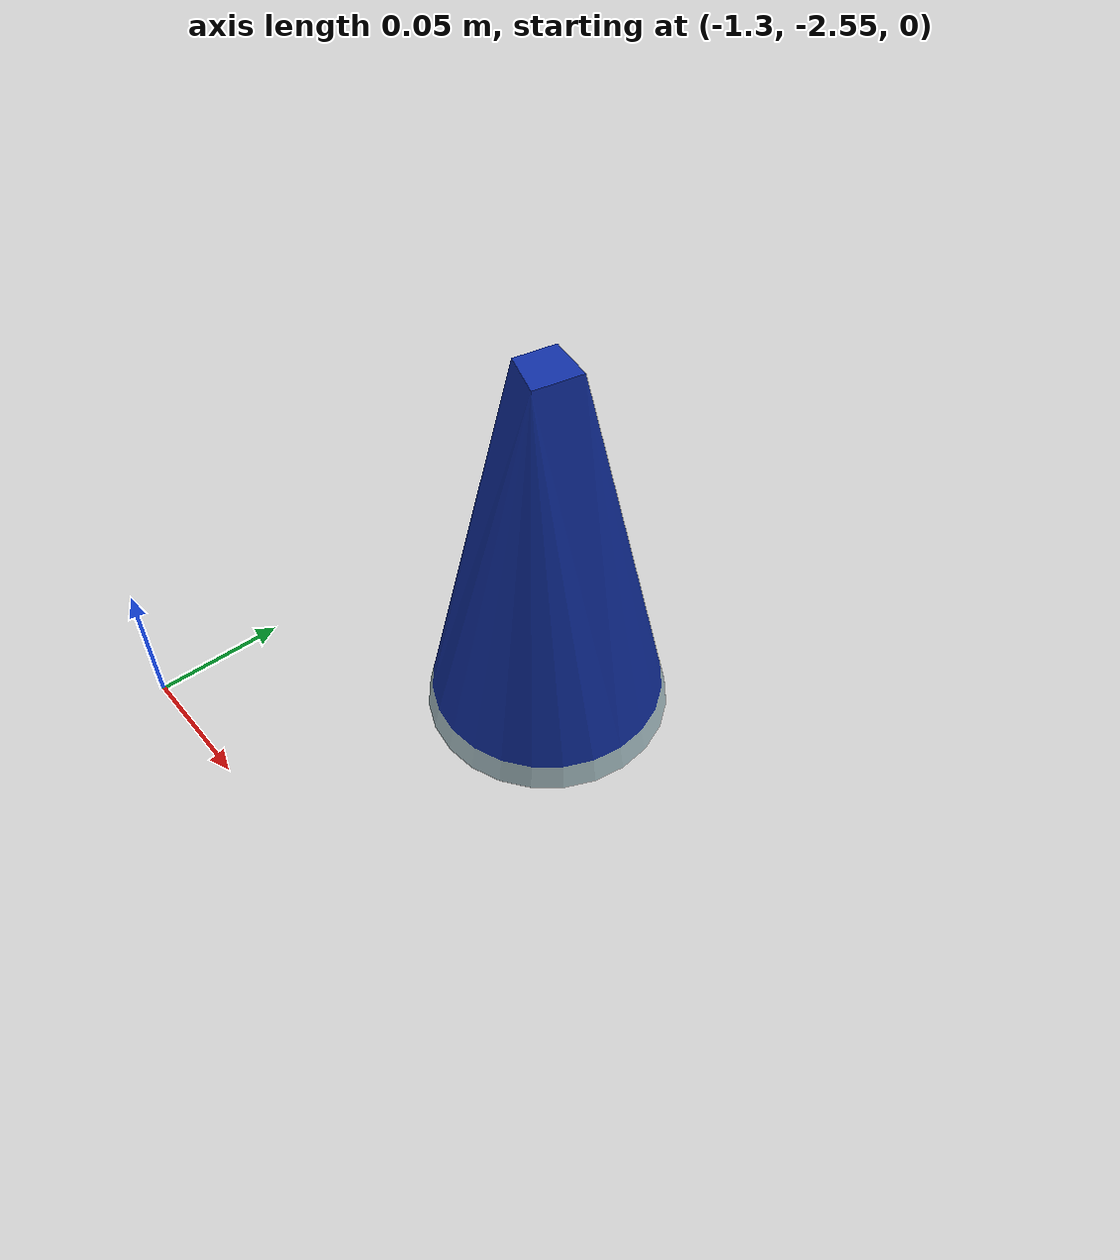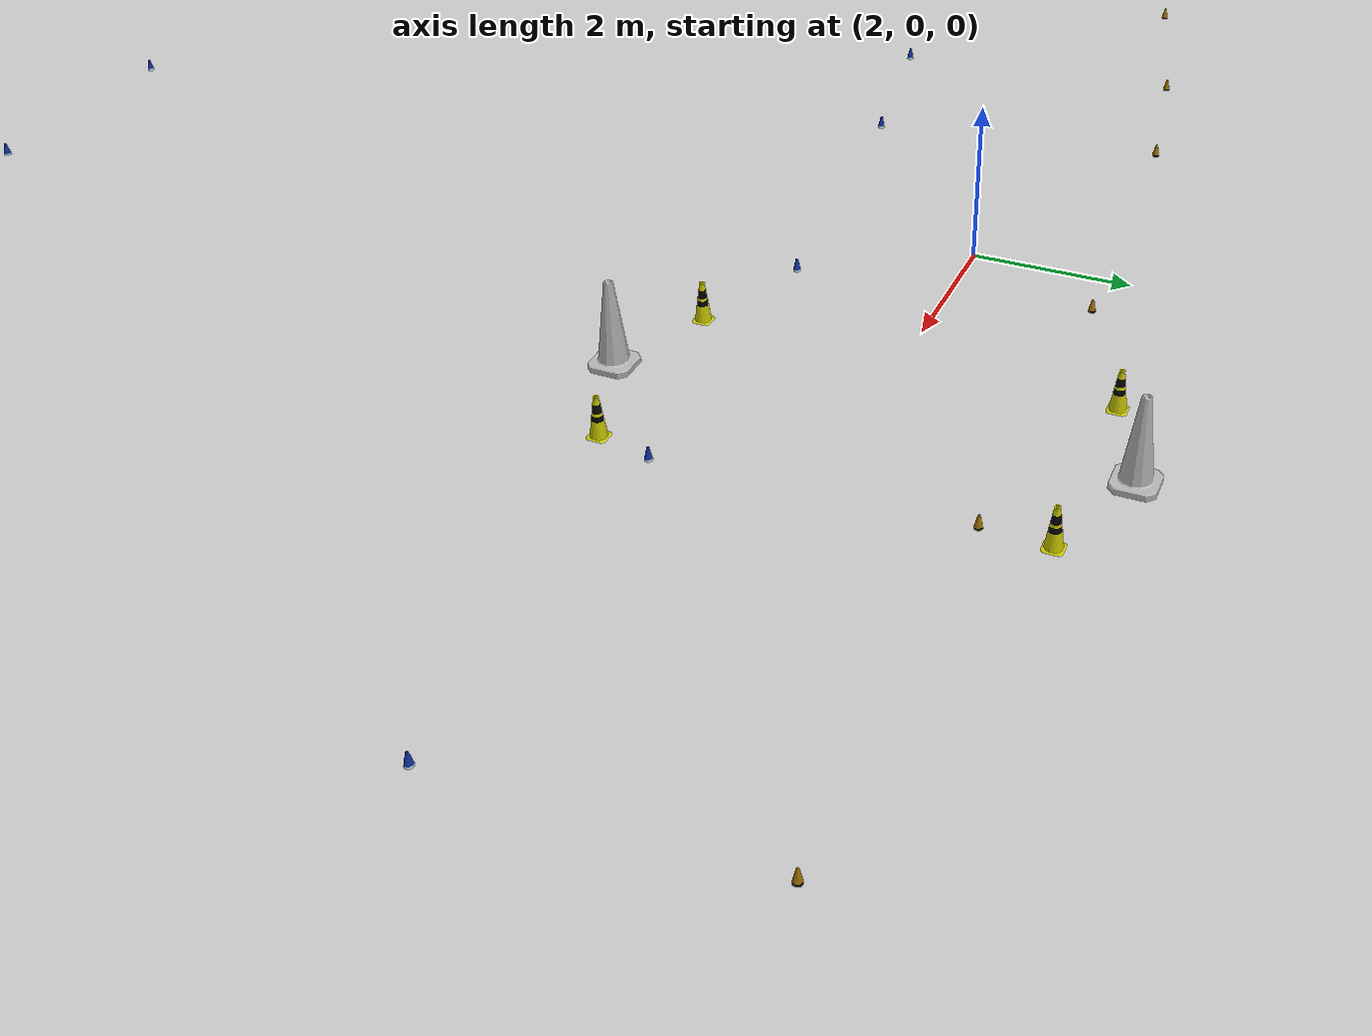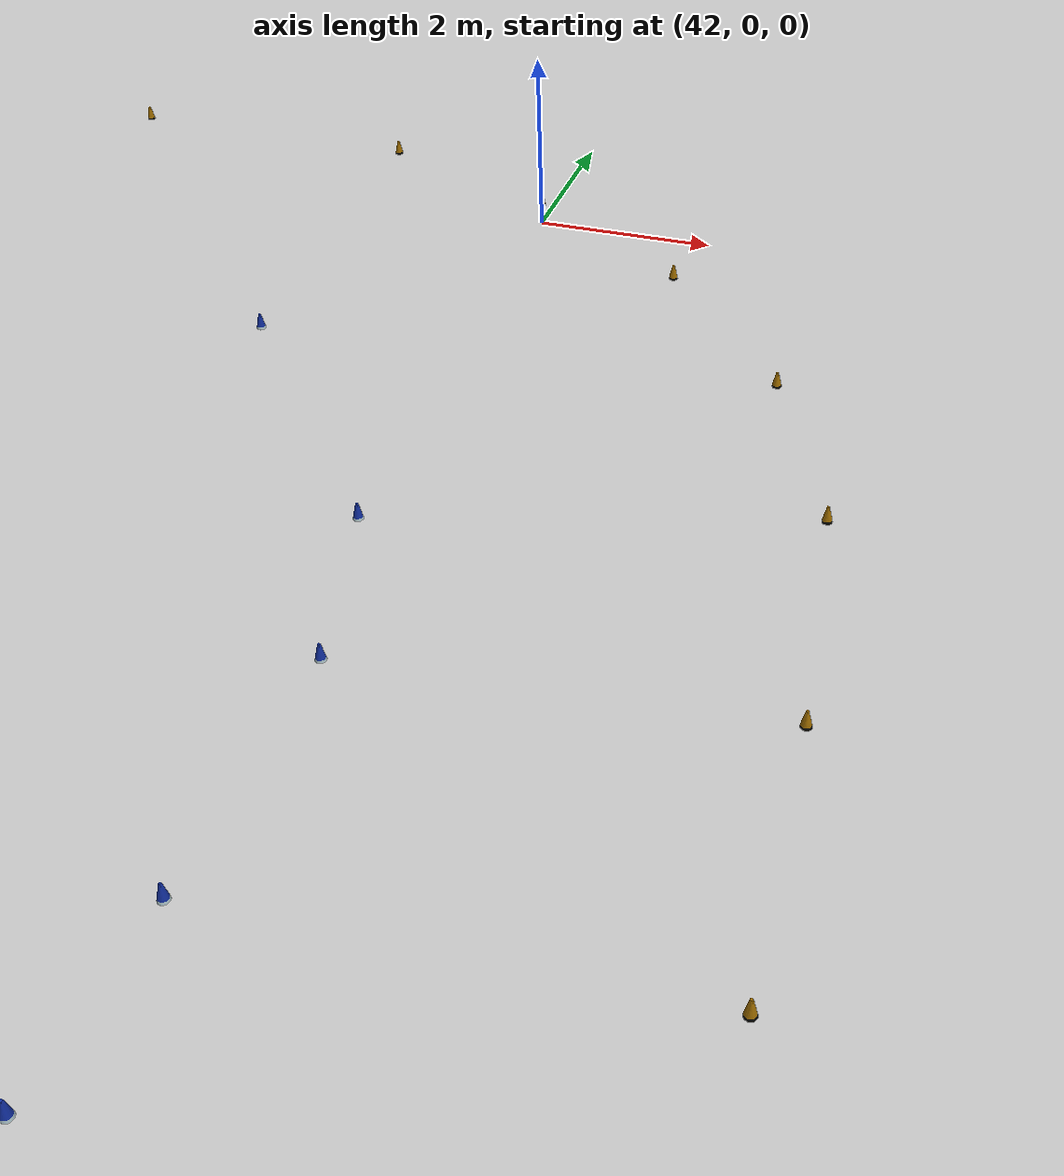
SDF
<sdf version="1.6">
 <world name="default">
  <light name="sun" type="directional">
   <pose>0 0 10 0 -0 0</pose>
   <diffuse>0.8 0.8 0.8 1</diffuse>
   <specular>0.2 0.2 0.2 1</specular>
   <attenuation>
    <range>1000</range>
    <constant>0.9</constant>
    <linear>0.01</linear>
    <quadratic>0.001</quadratic>
   </attenuation>
   <direction>-0.5 0.1 -0.9</direction>
  </light>
  <gravity>0 0 -9.8</gravity>
  <magnetic_field>6e-06 2.3e-05 -4.2e-05</magnetic_field>
  <atmosphere type="adiabatic"/>
  <physics name="default_physics" default="0" type="ode">
   <max_step_size>0.005</max_step_size>
   <real_time_factor>1</real_time_factor>
   <real_time_update_rate>200</real_time_update_rate>
  </physics>
  <scene><ambient>0.4 0.4 0.4 1</ambient><background>0.7 0.7 0.7 1</background><shadows>1</shadows></scene>
  <spherical_coordinates>
   <surface_model>EARTH_WGS84</surface_model>
   <latitude_deg>0</latitude_deg>
   <longitude_deg>0</longitude_deg>
   <elevation>0</elevation>
   <heading_deg>0</heading_deg>
  </spherical_coordinates>
  <include><uri>model://ground_plane</uri></include>
  <include><uri>model://fssim_gazebo/models/track</uri><name>track</name></include>
 </world>
</sdf>

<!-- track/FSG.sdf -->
<sdf version="1.4">
  <model name="some track">
    <include>
      <uri>model://fssim_gazebo/models/cone_blue</uri>
      <pose>-1.20535457134 -2.43421959877 0 0 0 0</pose>
      <name>cone_right</name>
    </include>
    <include>
      <uri>model://fssim_gazebo/models/cone_blue</uri>
      <pose>3.17810750008 -1.93232870102 0 0 0 0</pose>
      <name>cone_right</name>
    </include>
    <include>
      <uri>model://fssim_gazebo/models/cone_blue</uri>
      <pose>7.48558950424 -1.81353652477 0 0 0 0</pose>
      <name>cone_right</name>
    </include>
    <include>
      <uri>model://fssim_gazebo/models/cone_blue</uri>
      <pose>12.1316843033 -1.68396937847 0 0 0 0</pose>
      <name>cone_right</name>
    </include>
    <include>
      <uri>model://fssim_gazebo/models/cone_blue</uri>
      <pose>16.790725708 -1.63397860527 0 0 0 0</pose>
      <name>cone_right</name>
    </include>
    <include>
      <uri>model://fssim_gazebo/models/cone_blue</uri>
      <pose>21.0159664154 -1.57767641544 0 0 0 0</pose>
      <name>cone_right</name>
    </include>
    <include>
      <uri>model://fssim_gazebo/models/cone_blue</uri>
      <pose>25.9492740631 -1.68443393707 0 0 0 0</pose>
      <name>cone_right</name>
    </include>
    <include>
      <uri>model://fssim_gazebo/models/cone_blue</uri>
      <pose>29.0480709076 -1.72887885571 0 0 0 0</pose>
      <name>cone_right</name>
    </include>
    <include>
      <uri>model://fssim_gazebo/models/cone_blue</uri>
      <pose>32.6119613647 -1.83696222305 0 0 0 0</pose>
      <name>cone_right</name>
    </include>
    <include>
      <uri>model://fssim_gazebo/models/cone_blue</uri>
      <pose>35.9588241577 -2.02518367767 0 0 0 0</pose>
      <name>cone_right</name>
    </include>
    <include>
      <uri>model://fssim_gazebo/models/cone_blue</uri>
      <pose>39.9082717896 -3.04691457748 0 0 0 0</pose>
      <name>cone_right</name>
    </include>
    <include>
      <uri>model://fssim_gazebo/models/cone_blue</uri>
      <pose>42.1978797913 -5.7311501503 0 0 0 0</pose>
      <name>cone_right</name>
    </include>
    <include>
      <uri>model://fssim_gazebo/models/cone_blue</uri>
      <pose>42.643951416 -7.45758581161 0 0 0 0</pose>
      <name>cone_right</name>
    </include>
    <include>
      <uri>model://fssim_gazebo/models/cone_blue</uri>
      <pose>42.6222114563 -9.84560966492 0 0 0 0</pose>
      <name>cone_right</name>
    </include>
    <include>
      <uri>model://fssim_gazebo/models/cone_blue</uri>
      <pose>42.524066925 -11.4708385468 0 0 0 0</pose>
      <name>cone_right</name>
    </include>
    <include>
      <uri>model://fssim_gazebo/models/cone_blue</uri>
      <pose>42.1597290039 -13.4860305786 0 0 0 0</pose>
      <name>cone_right</name>
    </include>
    <include>
      <uri>model://fssim_gazebo/models/cone_blue</uri>
      <pose>41.4561500549 -15.1818876266 0 0 0 0</pose>
      <name>cone_right</name>
    </include>
    <include>
      <uri>model://fssim_gazebo/models/cone_blue</uri>
      <pose>40.5325622559 -16.8797531128 0 0 0 0</pose>
      <name>cone_right</name>
    </include>
    <include>
      <uri>model://fssim_gazebo/models/cone_blue</uri>
      <pose>38.5180549622 -18.9988632202 0 0 0 0</pose>
      <name>cone_right</name>
    </include>
    <include>
      <uri>model://fssim_gazebo/models/cone_blue</uri>
      <pose>36.2039756775 -20.470911026 0 0 0 0</pose>
      <name>cone_right</name>
    </include>
    <include>
      <uri>model://fssim_gazebo/models/cone_blue</uri>
      <pose>32.7586708069 -21.9738197327 0 0 0 0</pose>
      <name>cone_right</name>
    </include>
    <include>
      <uri>model://fssim_gazebo/models/cone_blue</uri>
      <pose>28.4735565186 -23.48179245 0 0 0 0</pose>
      <name>cone_right</name>
    </include>
    <include>
      <uri>model://fssim_gazebo/models/cone_blue</uri>
      <pose>25.4437217712 -24.171453476 0 0 0 0</pose>
      <name>cone_right</name>
    </include>
    <include>
      <uri>model://fssim_gazebo/models/cone_blue</uri>
      <pose>22.9642963409 -24.4952335358 0 0 0 0</pose>
      <name>cone_right</name>
    </include>
    <include>
      <uri>model://fssim_gazebo/models/cone_blue</uri>
      <pose>18.7935180664 -23.4676418304 0 0 0 0</pose>
      <name>cone_right</name>
    </include>
    <include>
      <uri>model://fssim_gazebo/models/cone_blue</uri>
      <pose>16.1738128662 -21.4524841309 0 0 0 0</pose>
      <name>cone_right</name>
    </include>
    <include>
      <uri>model://fssim_gazebo/models/cone_blue</uri>
      <pose>13.5638856888 -18.8669128418 0 0 0 0</pose>
      <name>cone_right</name>
    </include>
    <include>
      <uri>model://fssim_gazebo/models/cone_blue</uri>
      <pose>11.8896331787 -17.3642730713 0 0 0 0</pose>
      <name>cone_right</name>
    </include>
    <include>
      <uri>model://fssim_gazebo/models/cone_blue</uri>
      <pose>10.3036079407 -16.0993785858 0 0 0 0</pose>
      <name>cone_right</name>
    </include>
    <include>
      <uri>model://fssim_gazebo/models/cone_blue</uri>
      <pose>6.79945707321 -13.8660707474 0 0 0 0</pose>
      <name>cone_right</name>
    </include>
    <include>
      <uri>model://fssim_gazebo/models/cone_blue</uri>
      <pose>4.32830381393 -13.5115633011 0 0 0 0</pose>
      <name>cone_right</name>
    </include>
    <include>
      <uri>model://fssim_gazebo/models/cone_blue</uri>
      <pose>1.12301874161 -13.7139015198 0 0 0 0</pose>
      <name>cone_right</name>
    </include>
    <include>
      <uri>model://fssim_gazebo/models/cone_blue</uri>
      <pose>-2.75382375717 -14.1658267975 0 0 0 0</pose>
      <name>cone_right</name>
    </include>
    <include>
      <uri>model://fssim_gazebo/models/cone_blue</uri>
      <pose>-4.81454324722 -15.6764669418 0 0 0 0</pose>
      <name>cone_right</name>
    </include>
    <include>
      <uri>model://fssim_gazebo/models/cone_blue</uri>
      <pose>-7.15268754959 -19.0835819244 0 0 0 0</pose>
      <name>cone_right</name>
    </include>
    <include>
      <uri>model://fssim_gazebo/models/cone_blue</uri>
      <pose>-8.18414115906 -23.2163944244 0 0 0 0</pose>
      <name>cone_right</name>
    </include>
    <include>
      <uri>model://fssim_gazebo/models/cone_blue</uri>
      <pose>-7.90778493881 -27.239025116 0 0 0 0</pose>
      <name>cone_right</name>
    </include>
    <include>
      <uri>model://fssim_gazebo/models/cone_blue</uri>
      <pose>-7.00891208649 -31.0450992584 0 0 0 0</pose>
      <name>cone_right</name>
    </include>
    <include>
      <uri>model://fssim_gazebo/models/cone_blue</uri>
      <pose>-8.42116451263 -34.9212493896 0 0 0 0</pose>
      <name>cone_right</name>
    </include>
    <include>
      <uri>model://fssim_gazebo/models/cone_blue</uri>
      <pose>-10.3438024521 -39.3102645874 0 0 0 0</pose>
      <name>cone_right</name>
    </include>
    <include>
      <uri>model://fssim_gazebo/models/cone_blue</uri>
      <pose>-9.21577548981 -43.814994812 0 0 0 0</pose>
      <name>cone_right</name>
    </include>
    <include>
      <uri>model://fssim_gazebo/models/cone_blue</uri>
      <pose>-6.92036342621 -47.6307487488 0 0 0 0</pose>
      <name>cone_right</name>
    </include>
    <include>
      <uri>model://fssim_gazebo/models/cone_blue</uri>
      <pose>-4.60597276688 -50.5477561951 0 0 0 0</pose>
      <name>cone_right</name>
    </include>
    <include>
      <uri>model://fssim_gazebo/models/cone_blue</uri>
      <pose>-2.35273480415 -51.8892745972 0 0 0 0</pose>
      <name>cone_right</name>
    </include>
    <include>
      <uri>model://fssim_gazebo/models/cone_blue</uri>
      <pose>-0.165838509798 -52.8908081055 0 0 0 0</pose>
      <name>cone_right</name>
    </include>
    <include>
      <uri>model://fssim_gazebo/models/cone_blue</uri>
      <pose>2.04115414619 -53.2722854614 0 0 0 0</pose>
      <name>cone_right</name>
    </include>
    <include>
      <uri>model://fssim_gazebo/models/cone_blue</uri>
      <pose>4.15739202499 -53.3649635315 0 0 0 0</pose>
      <name>cone_right</name>
    </include>
    <include>
      <uri>model://fssim_gazebo/models/cone_blue</uri>
      <pose>8.75176334381 -53.057434082 0 0 0 0</pose>
      <name>cone_right</name>
    </include>
    <include>
      <uri>model://fssim_gazebo/models/cone_blue</uri>
      <pose>12.9969034195 -52.1645202637 0 0 0 0</pose>
      <name>cone_right</name>
    </include>
    <include>
      <uri>model://fssim_gazebo/models/cone_blue</uri>
      <pose>16.4463691711 -52.5517196655 0 0 0 0</pose>
      <name>cone_right</name>
    </include>
    <include>
      <uri>model://fssim_gazebo/models/cone_blue</uri>
      <pose>19.5894641876 -54.8799247742 0 0 0 0</pose>
      <name>cone_right</name>
    </include>
    <include>
      <uri>model://fssim_gazebo/models/cone_blue</uri>
      <pose>21.4045848846 -57.2886390686 0 0 0 0</pose>
      <name>cone_right</name>
    </include>
    <include>
      <uri>model://fssim_gazebo/models/cone_blue</uri>
      <pose>25.2624359131 -63.3929138184 0 0 0 0</pose>
      <name>cone_right</name>
    </include>
    <include>
      <uri>model://fssim_gazebo/models/cone_blue</uri>
      <pose>26.2041530609 -65.9767227173 0 0 0 0</pose>
      <name>cone_right</name>
    </include>
    <include>
      <uri>model://fssim_gazebo/models/cone_blue</uri>
      <pose>26.14752388 -68.3555679321 0 0 0 0</pose>
      <name>cone_right</name>
    </include>
    <include>
      <uri>model://fssim_gazebo/models/cone_blue</uri>
      <pose>24.7101478577 -69.9159011841 0 0 0 0</pose>
      <name>cone_right</name>
    </include>
    <include>
      <uri>model://fssim_gazebo/models/cone_blue</uri>
      <pose>21.1220054626 -70.2595901489 0 0 0 0</pose>
      <name>cone_right</name>
    </include>
    <include>
      <uri>model://fssim_gazebo/models/cone_blue</uri>
      <pose>16.8929786682 -69.4648895264 0 0 0 0</pose>
      <name>cone_right</name>
    </include>
    <include>
      <uri>model://fssim_gazebo/models/cone_blue</uri>
      <pose>12.5505523682 -68.4203567505 0 0 0 0</pose>
      <name>cone_right</name>
    </include>
    <include>
      <uri>model://fssim_gazebo/models/cone_blue</uri>
      <pose>8.61410617828 -67.5245056152 0 0 0 0</pose>
      <name>cone_right</name>
    </include>
    <include>
      <uri>model://fssim_gazebo/models/cone_blue</uri>
      <pose>5.1298866272 -66.6364212036 0 0 0 0</pose>
      <name>cone_right</name>
    </include>
    <include>
      <uri>model://fssim_gazebo/models/cone_blue</uri>
      <pose>1.29183077812 -65.5188293457 0 0 0 0</pose>
      <name>cone_right</name>
    </include>
    <include>
      <uri>model://fssim_gazebo/models/cone_blue</uri>
      <pose>-0.911457359791 -64.0004882812 0 0 0 0</pose>
      <name>cone_right</name>
    </include>
    <include>
      <uri>model://fssim_gazebo/models/cone_blue</uri>
      <pose>-3.19275069237 -61.7590522766 0 0 0 0</pose>
      <name>cone_right</name>
    </include>
    <include>
      <uri>model://fssim_gazebo/models/cone_blue</uri>
      <pose>-4.88976144791 -59.9218444824 0 0 0 0</pose>
      <name>cone_right</name>
    </include>
    <include>
      <uri>model://fssim_gazebo/models/cone_blue</uri>
      <pose>-7.34266805649 -57.3790779114 0 0 0 0</pose>
      <name>cone_right</name>
    </include>
    <include>
      <uri>model://fssim_gazebo/models/cone_blue</uri>
      <pose>-9.3245267868 -55.36485672 0 0 0 0</pose>
      <name>cone_right</name>
    </include>
    <include>
      <uri>model://fssim_gazebo/models/cone_blue</uri>
      <pose>-11.9270553589 -52.5858802795 0 0 0 0</pose>
      <name>cone_right</name>
    </include>
    <include>
      <uri>model://fssim_gazebo/models/cone_blue</uri>
      <pose>-13.9907217026 -50.4050865173 0 0 0 0</pose>
      <name>cone_right</name>
    </include>
    <include>
      <uri>model://fssim_gazebo/models/cone_blue</uri>
      <pose>-15.8556175232 -48.291885376 0 0 0 0</pose>
      <name>cone_right</name>
    </include>
    <include>
      <uri>model://fssim_gazebo/models/cone_blue</uri>
      <pose>-17.4213695526 -46.3403968811 0 0 0 0</pose>
      <name>cone_right</name>
    </include>
    <include>
      <uri>model://fssim_gazebo/models/cone_blue</uri>
      <pose>-18.9634799957 -44.4720039368 0 0 0 0</pose>
      <name>cone_right</name>
    </include>
    <include>
      <uri>model://fssim_gazebo/models/cone_blue</uri>
      <pose>-20.8690338135 -41.1217308044 0 0 0 0</pose>
      <name>cone_right</name>
    </include>
    <include>
      <uri>model://fssim_gazebo/models/cone_blue</uri>
      <pose>-21.7830982208 -39.5535202026 0 0 0 0</pose>
      <name>cone_right</name>
    </include>
    <include>
      <uri>model://fssim_gazebo/models/cone_blue</uri>
      <pose>-22.1184329987 -36.9808921814 0 0 0 0</pose>
      <name>cone_right</name>
    </include>
    <include>
      <uri>model://fssim_gazebo/models/cone_blue</uri>
      <pose>-22.3782291412 -33.3755264282 0 0 0 0</pose>
      <name>cone_right</name>
    </include>
    <include>
      <uri>model://fssim_gazebo/models/cone_blue</uri>
      <pose>-22.2891635895 -29.8054790497 0 0 0 0</pose>
      <name>cone_right</name>
    </include>
    <include>
      <uri>model://fssim_gazebo/models/cone_blue</uri>
      <pose>-21.6834945679 -25.6726341248 0 0 0 0</pose>
      <name>cone_right</name>
    </include>
    <include>
      <uri>model://fssim_gazebo/models/cone_blue</uri>
      <pose>-20.8396205902 -21.7996044159 0 0 0 0</pose>
      <name>cone_right</name>
    </include>
    <include>
      <uri>model://fssim_gazebo/models/cone_blue</uri>
      <pose>-19.7338562012 -18.0672054291 0 0 0 0</pose>
      <name>cone_right</name>
    </include>
    <include>
      <uri>model://fssim_gazebo/models/cone_blue</uri>
      <pose>-18.7997817993 -14.3690509796 0 0 0 0</pose>
      <name>cone_right</name>
    </include>
    <include>
      <uri>model://fssim_gazebo/models/cone_blue</uri>
      <pose>-17.489906311 -10.8447647095 0 0 0 0</pose>
      <name>cone_right</name>
    </include>
    <include>
      <uri>model://fssim_gazebo/models/cone_blue</uri>
      <pose>-15.5611610413 -8.86956310272 0 0 0 0</pose>
      <name>cone_right</name>
    </include>
    <include>
      <uri>model://fssim_gazebo/models/cone_blue</uri>
      <pose>-13.9415597916 -7.27876806259 0 0 0 0</pose>
      <name>cone_right</name>
    </include>
    <include>
      <uri>model://fssim_gazebo/models/cone_blue</uri>
      <pose>-11.831618309 -5.82119607925 0 0 0 0</pose>
      <name>cone_right</name>
    </include>
    <include>
      <uri>model://fssim_gazebo/models/cone_blue</uri>
      <pose>-9.60293102264 -4.78612518311 0 0 0 0</pose>
      <name>cone_right</name>
    </include>
    <include>
      <uri>model://fssim_gazebo/models/cone_blue</uri>
      <pose>-6.35780382156 -3.627846241 0 0 0 0</pose>
      <name>cone_right</name>
    </include>
    <include>
      <uri>model://fssim_gazebo/models/cone_blue</uri>
      <pose>-3.79635858536 -2.90468358994 0 0 0 0</pose>
      <name>cone_right</name>
    </include>
    <include>
      <uri>model://fssim_gazebo/models/cone_blue</uri>
      <pose>-1.20535457134 -2.43421959877 0 0 0 0</pose>
      <name>cone_right</name>
    </include>
    <include>
      <uri>model://fssim_gazebo/models/cone_yellow</uri>
      <pose>-1.76674330235 1.47030568123 0 0 0 0</pose>
      <name>cone_left</name>
    </include>
    <include>
      <uri>model://fssim_gazebo/models/cone_yellow</uri>
      <pose>2.76089644432 1.7153673172 0 0 0 0</pose>
      <name>cone_left</name>
    </include>
    <include>
      <uri>model://fssim_gazebo/models/cone_yellow</uri>
      <pose>7.27864980698 1.72703278065 0 0 0 0</pose>
      <name>cone_left</name>
    </include>
    <include>
      <uri>model://fssim_gazebo/models/cone_yellow</uri>
      <pose>12.0349731445 1.77701556683 0 0 0 0</pose>
      <name>cone_left</name>
    </include>
    <include>
      <uri>model://fssim_gazebo/models/cone_yellow</uri>
      <pose>16.5392436981 1.85751795769 0 0 0 0</pose>
      <name>cone_left</name>
    </include>
    <include>
      <uri>model://fssim_gazebo/models/cone_yellow</uri>
      <pose>21.0335502625 1.90579783916 0 0 0 0</pose>
      <name>cone_left</name>
    </include>
    <include>
      <uri>model://fssim_gazebo/models/cone_yellow</uri>
      <pose>25.8245449066 1.8236978054 0 0 0 0</pose>
      <name>cone_left</name>
    </include>
    <include>
      <uri>model://fssim_gazebo/models/cone_yellow</uri>
      <pose>29.008146286 1.6881827116 0 0 0 0</pose>
      <name>cone_left</name>
    </include>
    <include>
      <uri>model://fssim_gazebo/models/cone_yellow</uri>
      <pose>32.8539886475 1.53236305714 0 0 0 0</pose>
      <name>cone_left</name>
    </include>
    <include>
      <uri>model://fssim_gazebo/models/cone_yellow</uri>
      <pose>36.0541305542 1.40598678589 0 0 0 0</pose>
      <name>cone_left</name>
    </include>
    <include>
      <uri>model://fssim_gazebo/models/cone_yellow</uri>
      <pose>39.6403274536 1.33292233944 0 0 0 0</pose>
      <name>cone_left</name>
    </include>
    <include>
      <uri>model://fssim_gazebo/models/cone_yellow</uri>
      <pose>41.8411369324 0.461700230837 0 0 0 0</pose>
      <name>cone_left</name>
    </include>
    <include>
      <uri>model://fssim_gazebo/models/cone_yellow</uri>
      <pose>43.7949371338 -0.824330449104 0 0 0 0</pose>
      <name>cone_left</name>
    </include>
    <include>
      <uri>model://fssim_gazebo/models/cone_yellow</uri>
      <pose>45.3121299744 -2.6312391758 0 0 0 0</pose>
      <name>cone_left</name>
    </include>
    <include>
      <uri>model://fssim_gazebo/models/cone_yellow</uri>
      <pose>46.1553916931 -4.62501859665 0 0 0 0</pose>
      <name>cone_left</name>
    </include>
    <include>
      <uri>model://fssim_gazebo/models/cone_yellow</uri>
      <pose>46.4220657349 -7.10254859924 0 0 0 0</pose>
      <name>cone_left</name>
    </include>
    <include>
      <uri>model://fssim_gazebo/models/cone_yellow</uri>
      <pose>46.5321502686 -9.60714149475 0 0 0 0</pose>
      <name>cone_left</name>
    </include>
    <include>
      <uri>model://fssim_gazebo/models/cone_yellow</uri>
      <pose>46.3761138916 -11.952504158 0 0 0 0</pose>
      <name>cone_left</name>
    </include>
    <include>
      <uri>model://fssim_gazebo/models/cone_yellow</uri>
      <pose>45.840171814 -14.4087295532 0 0 0 0</pose>
      <name>cone_left</name>
    </include>
    <include>
      <uri>model://fssim_gazebo/models/cone_yellow</uri>
      <pose>45.0923805237 -16.5197753906 0 0 0 0</pose>
      <name>cone_left</name>
    </include>
    <include>
      <uri>model://fssim_gazebo/models/cone_yellow</uri>
      <pose>43.6631126404 -19.0952739716 0 0 0 0</pose>
      <name>cone_left</name>
    </include>
    <include>
      <uri>model://fssim_gazebo/models/cone_yellow</uri>
      <pose>41.3715438843 -21.7454833984 0 0 0 0</pose>
      <name>cone_left</name>
    </include>
    <include>
      <uri>model://fssim_gazebo/models/cone_yellow</uri>
      <pose>37.8901481628 -24.0829868317 0 0 0 0</pose>
      <name>cone_left</name>
    </include>
    <include>
      <uri>model://fssim_gazebo/models/cone_yellow</uri>
      <pose>34.6198616028 -25.5377349854 0 0 0 0</pose>
      <name>cone_left</name>
    </include>
    <include>
      <uri>model://fssim_gazebo/models/cone_yellow</uri>
      <pose>31.2377872467 -26.407459259 0 0 0 0</pose>
      <name>cone_left</name>
    </include>
    <include>
      <uri>model://fssim_gazebo/models/cone_yellow</uri>
      <pose>27.4351100922 -27.5946540833 0 0 0 0</pose>
      <name>cone_left</name>
    </include>
    <include>
      <uri>model://fssim_gazebo/models/cone_yellow</uri>
      <pose>24.4867210388 -28.2711963654 0 0 0 0</pose>
      <name>cone_left</name>
    </include>
    <include>
      <uri>model://fssim_gazebo/models/cone_yellow</uri>
      <pose>21.9398899078 -28.5392894745 0 0 0 0</pose>
      <name>cone_left</name>
    </include>
    <include>
      <uri>model://fssim_gazebo/models/cone_yellow</uri>
      <pose>17.7762260437 -27.4994373322 0 0 0 0</pose>
      <name>cone_left</name>
    </include>
    <include>
      <uri>model://fssim_gazebo/models/cone_yellow</uri>
      <pose>14.9727420807 -25.1546077728 0 0 0 0</pose>
      <name>cone_left</name>
    </include>
    <include>
      <uri>model://fssim_gazebo/models/cone_yellow</uri>
      <pose>13.4640274048 -23.7030353546 0 0 0 0</pose>
      <name>cone_left</name>
    </include>
    <include>
      <uri>model://fssim_gazebo/models/cone_yellow</uri>
      <pose>11.3517541885 -21.9376277924 0 0 0 0</pose>
      <name>cone_left</name>
    </include>
    <include>
      <uri>model://fssim_gazebo/models/cone_yellow</uri>
      <pose>9.28481960297 -20.3903141022 0 0 0 0</pose>
      <name>cone_left</name>
    </include>
    <include>
      <uri>model://fssim_gazebo/models/cone_yellow</uri>
      <pose>7.48336029053 -18.9196147919 0 0 0 0</pose>
      <name>cone_left</name>
    </include>
    <include>
      <uri>model://fssim_gazebo/models/cone_yellow</uri>
      <pose>4.77595758438 -17.4981155396 0 0 0 0</pose>
      <name>cone_left</name>
    </include>
    <include>
      <uri>model://fssim_gazebo/models/cone_yellow</uri>
      <pose>1.28759145737 -17.3332099915 0 0 0 0</pose>
      <name>cone_left</name>
    </include>
    <include>
      <uri>model://fssim_gazebo/models/cone_yellow</uri>
      <pose>-1.63388907909 -18.2758922577 0 0 0 0</pose>
      <name>cone_left</name>
    </include>
    <include>
      <uri>model://fssim_gazebo/models/cone_yellow</uri>
      <pose>-3.17948746681 -21.7290554047 0 0 0 0</pose>
      <name>cone_left</name>
    </include>
    <include>
      <uri>model://fssim_gazebo/models/cone_yellow</uri>
      <pose>-3.27370977402 -25.0204906464 0 0 0 0</pose>
      <name>cone_left</name>
    </include>
    <include>
      <uri>model://fssim_gazebo/models/cone_yellow</uri>
      <pose>-3.07798027992 -27.4282741547 0 0 0 0</pose>
      <name>cone_left</name>
    </include>
    <include>
      <uri>model://fssim_gazebo/models/cone_yellow</uri>
      <pose>-2.77587771416 -30.082868576 0 0 0 0</pose>
      <name>cone_left</name>
    </include>
    <include>
      <uri>model://fssim_gazebo/models/cone_yellow</uri>
      <pose>-3.4180958271 -34.0824127197 0 0 0 0</pose>
      <name>cone_left</name>
    </include>
    <include>
      <uri>model://fssim_gazebo/models/cone_yellow</uri>
      <pose>-5.1704211235 -37.1482276917 0 0 0 0</pose>
      <name>cone_left</name>
    </include>
    <include>
      <uri>model://fssim_gazebo/models/cone_yellow</uri>
      <pose>-6.55036306381 -40.3913154602 0 0 0 0</pose>
      <name>cone_left</name>
    </include>
    <include>
      <uri>model://fssim_gazebo/models/cone_yellow</uri>
      <pose>-5.8644695282 -42.8615951538 0 0 0 0</pose>
      <name>cone_left</name>
    </include>
    <include>
      <uri>model://fssim_gazebo/models/cone_yellow</uri>
      <pose>-4.37757587433 -44.9487495422 0 0 0 0</pose>
      <name>cone_left</name>
    </include>
    <include>
      <uri>model://fssim_gazebo/models/cone_yellow</uri>
      <pose>-2.17299032211 -47.4768180847 0 0 0 0</pose>
      <name>cone_left</name>
    </include>
    <include>
      <uri>model://fssim_gazebo/models/cone_yellow</uri>
      <pose>0.147873014212 -48.7639732361 0 0 0 0</pose>
      <name>cone_left</name>
    </include>
    <include>
      <uri>model://fssim_gazebo/models/cone_yellow</uri>
      <pose>4.08864498138 -48.8794441223 0 0 0 0</pose>
      <name>cone_left</name>
    </include>
    <include>
      <uri>model://fssim_gazebo/models/cone_yellow</uri>
      <pose>8.05480289459 -47.9160308838 0 0 0 0</pose>
      <name>cone_left</name>
    </include>
    <include>
      <uri>model://fssim_gazebo/models/cone_yellow</uri>
      <pose>11.9599332809 -47.6551475525 0 0 0 0</pose>
      <name>cone_left</name>
    </include>
    <include>
      <uri>model://fssim_gazebo/models/cone_yellow</uri>
      <pose>14.9592418671 -47.935005188 0 0 0 0</pose>
      <name>cone_left</name>
    </include>
    <include>
      <uri>model://fssim_gazebo/models/cone_yellow</uri>
      <pose>17.607585907 -48.6755485535 0 0 0 0</pose>
      <name>cone_left</name>
    </include>
    <include>
      <uri>model://fssim_gazebo/models/cone_yellow</uri>
      <pose>19.5705165863 -49.7755432129 0 0 0 0</pose>
      <name>cone_left</name>
    </include>
    <include>
      <uri>model://fssim_gazebo/models/cone_yellow</uri>
      <pose>22.6065139771 -52.1836853027 0 0 0 0</pose>
      <name>cone_left</name>
    </include>
    <include>
      <uri>model://fssim_gazebo/models/cone_yellow</uri>
      <pose>25.3403396606 -55.3910713196 0 0 0 0</pose>
      <name>cone_left</name>
    </include>
    <include>
      <uri>model://fssim_gazebo/models/cone_yellow</uri>
      <pose>27.5260028839 -58.7276992798 0 0 0 0</pose>
      <name>cone_left</name>
    </include>
    <include>
      <uri>model://fssim_gazebo/models/cone_yellow</uri>
      <pose>29.1637706757 -62.0333976746 0 0 0 0</pose>
      <name>cone_left</name>
    </include>
    <include>
      <uri>model://fssim_gazebo/models/cone_yellow</uri>
      <pose>30.1006793976 -65.7219696045 0 0 0 0</pose>
      <name>cone_left</name>
    </include>
    <include>
      <uri>model://fssim_gazebo/models/cone_yellow</uri>
      <pose>30.1847019196 -69.0223770142 0 0 0 0</pose>
      <name>cone_left</name>
    </include>
    <include>
      <uri>model://fssim_gazebo/models/cone_yellow</uri>
      <pose>29.283241272 -72.0737915039 0 0 0 0</pose>
      <name>cone_left</name>
    </include>
    <include>
      <uri>model://fssim_gazebo/models/cone_yellow</uri>
      <pose>26.9897003174 -73.9624557495 0 0 0 0</pose>
      <name>cone_left</name>
    </include>
    <include>
      <uri>model://fssim_gazebo/models/cone_yellow</uri>
      <pose>23.7649536133 -74.3958969116 0 0 0 0</pose>
      <name>cone_left</name>
    </include>
    <include>
      <uri>model://fssim_gazebo/models/cone_yellow</uri>
      <pose>19.9833869934 -74.2500610352 0 0 0 0</pose>
      <name>cone_left</name>
    </include>
    <include>
      <uri>model://fssim_gazebo/models/cone_yellow</uri>
      <pose>15.7009191513 -73.0300064087 0 0 0 0</pose>
      <name>cone_left</name>
    </include>
    <include>
      <uri>model://fssim_gazebo/models/cone_yellow</uri>
      <pose>11.5243768692 -71.9855651855 0 0 0 0</pose>
      <name>cone_left</name>
    </include>
    <include>
      <uri>model://fssim_gazebo/models/cone_yellow</uri>
      <pose>7.55422449112 -71.0143661499 0 0 0 0</pose>
      <name>cone_left</name>
    </include>
    <include>
      <uri>model://fssim_gazebo/models/cone_yellow</uri>
      <pose>3.99313831329 -70.1475296021 0 0 0 0</pose>
      <name>cone_left</name>
    </include>
    <include>
      <uri>model://fssim_gazebo/models/cone_yellow</uri>
      <pose>-0.0668102130294 -69.1028747559 0 0 0 0</pose>
      <name>cone_left</name>
    </include>
    <include>
      <uri>model://fssim_gazebo/models/cone_yellow</uri>
      <pose>-3.44227051735 -67.2309875488 0 0 0 0</pose>
      <name>cone_left</name>
    </include>
    <include>
      <uri>model://fssim_gazebo/models/cone_yellow</uri>
      <pose>-5.49040985107 -65.1119689941 0 0 0 0</pose>
      <name>cone_left</name>
    </include>
    <include>
      <uri>model://fssim_gazebo/models/cone_yellow</uri>
      <pose>-7.24591016769 -62.596157074 0 0 0 0</pose>
      <name>cone_left</name>
    </include>
    <include>
      <uri>model://fssim_gazebo/models/cone_yellow</uri>
      <pose>-9.36122608185 -60.3147392273 0 0 0 0</pose>
      <name>cone_left</name>
    </include>
    <include>
      <uri>model://fssim_gazebo/models/cone_yellow</uri>
      <pose>-11.5451803207 -58.3123054504 0 0 0 0</pose>
      <name>cone_left</name>
    </include>
    <include>
      <uri>model://fssim_gazebo/models/cone_yellow</uri>
      <pose>-14.4151830673 -54.9342651367 0 0 0 0</pose>
      <name>cone_left</name>
    </include>
    <include>
      <uri>model://fssim_gazebo/models/cone_yellow</uri>
      <pose>-16.5186710358 -52.5611877441 0 0 0 0</pose>
      <name>cone_left</name>
    </include>
    <include>
      <uri>model://fssim_gazebo/models/cone_yellow</uri>
      <pose>-18.5795021057 -50.1394462585 0 0 0 0</pose>
      <name>cone_left</name>
    </include>
    <include>
      <uri>model://fssim_gazebo/models/cone_yellow</uri>
      <pose>-21.8124217987 -46.6210861206 0 0 0 0</pose>
      <name>cone_left</name>
    </include>
    <include>
      <uri>model://fssim_gazebo/models/cone_yellow</uri>
      <pose>-24.7267017365 -43.475151062 0 0 0 0</pose>
      <name>cone_left</name>
    </include>
    <include>
      <uri>model://fssim_gazebo/models/cone_yellow</uri>
      <pose>-25.7503032684 -40.3981132507 0 0 0 0</pose>
      <name>cone_left</name>
    </include>
    <include>
      <uri>model://fssim_gazebo/models/cone_yellow</uri>
      <pose>-26.0476665497 -36.9700622559 0 0 0 0</pose>
      <name>cone_left</name>
    </include>
    <include>
      <uri>model://fssim_gazebo/models/cone_yellow</uri>
      <pose>-25.9315605164 -32.6193275452 0 0 0 0</pose>
      <name>cone_left</name>
    </include>
    <include>
      <uri>model://fssim_gazebo/models/cone_yellow</uri>
      <pose>-25.7263412476 -28.6441040039 0 0 0 0</pose>
      <name>cone_left</name>
    </include>
    <include>
      <uri>model://fssim_gazebo/models/cone_yellow</uri>
      <pose>-25.0013523102 -24.6762886047 0 0 0 0</pose>
      <name>cone_left</name>
    </include>
    <include>
      <uri>model://fssim_gazebo/models/cone_yellow</uri>
      <pose>-24.2922458649 -20.8632926941 0 0 0 0</pose>
      <name>cone_left</name>
    </include>
    <include>
      <uri>model://fssim_gazebo/models/cone_yellow</uri>
      <pose>-23.3050079346 -17.2035923004 0 0 0 0</pose>
      <name>cone_left</name>
    </include>
    <include>
      <uri>model://fssim_gazebo/models/cone_yellow</uri>
      <pose>-22.1317424774 -13.6423683167 0 0 0 0</pose>
      <name>cone_left</name>
    </include>
    <include>
      <uri>model://fssim_gazebo/models/cone_yellow</uri>
      <pose>-20.7885227203 -9.28058624268 0 0 0 0</pose>
      <name>cone_left</name>
    </include>
    <include>
      <uri>model://fssim_gazebo/models/cone_yellow</uri>
      <pose>-18.4632396698 -6.41253614426 0 0 0 0</pose>
      <name>cone_left</name>
    </include>
    <include>
      <uri>model://fssim_gazebo/models/cone_yellow</uri>
      <pose>-15.6022777557 -3.68699145317 0 0 0 0</pose>
      <name>cone_left</name>
    </include>
    <include>
      <uri>model://fssim_gazebo/models/cone_yellow</uri>
      <pose>-13.5745029449 -2.1660451889 0 0 0 0</pose>
      <name>cone_left</name>
    </include>
    <include>
      <uri>model://fssim_gazebo/models/cone_yellow</uri>
      <pose>-11.5146017075 -0.892862737179 0 0 0 0</pose>
      <name>cone_left</name>
    </include>
    <include>
      <uri>model://fssim_gazebo/models/cone_yellow</uri>
      <pose>-7.04339790344 0.440190732479 0 0 0 0</pose>
      <name>cone_left</name>
    </include>
    <include>
      <uri>model://fssim_gazebo/models/cone_yellow</uri>
      <pose>-4.10932731628 1.10956943035 0 0 0 0</pose>
      <name>cone_left</name>
    </include>
    <include>
      <uri>model://fssim_gazebo/models/cone_yellow</uri>
      <pose>-1.76674330235 1.47030568123 0 0 0 0</pose>
      <name>cone_left</name>
    </include>
    <include>
      <uri>model://fssim_gazebo/models/cone_orange_big</uri>
      <pose>4.7 2.5 0 0 0 0</pose>
      <name>cone_orange_big</name>
    </include>
    <include>
      <uri>model://fssim_gazebo/models/cone_orange_big</uri>
      <pose>4.7 -2.5 0 0 0 0</pose>
      <name>cone_orange_big</name>
    </include>
    <include>
      <uri>model://fssim_gazebo/models/cone_orange_big</uri>
      <pose>7.3 2.5 0 0 0 0</pose>
      <name>cone_orange_big</name>
    </include>
    <include>
      <uri>model://fssim_gazebo/models/cone_orange_big</uri>
      <pose>7.3 -2.5 0 0 0 0</pose>
      <name>cone_orange_big</name>
    </include>
    <include>
      <uri>model://fssim_gazebo/models/time_keeping</uri>
      <pose>6.0 3.0 0 0 0 0</pose>
      <name>tk_device_0</name>
    </include>
    <include>
      <uri>model://fssim_gazebo/models/time_keeping</uri>
      <pose>6.0 -3.0 0 0 0 0</pose>
      <name>tk_device_1</name>
    </include>
  </model>
</sdf>

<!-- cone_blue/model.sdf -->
<sdf version='1.4'>
  <model name="cone_blue">
    <link name="link">
      <collision name="collision">
        <geometry>
          <mesh>
            <uri>model://fssim_gazebo/meshes/cone/cone_blue.dae</uri>
     	      <scale>1 1 1</scale>
          </mesh>
        </geometry>
      </collision>
      <visual name="visual">
        <geometry>
          <mesh>
            <uri>model://fssim_gazebo/meshes/cone/cone_blue.dae</uri>
            <scale>1 1 1</scale>
          </mesh>
        </geometry>
      </visual>
    </link>
  </model>
</sdf>

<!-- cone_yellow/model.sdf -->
<sdf version='1.4'>
  <model name="cone_yellow">
    <link name="link">
      <collision name="collision">
        <geometry>
          <mesh>
            <uri>model://fssim_gazebo/meshes/cone/cone_yellow.dae</uri>
     	      <scale>1 1 1</scale>
          </mesh>
        </geometry>
      </collision>
      <visual name="visual">
        <geometry>
          <mesh>
            <uri>model://fssim_gazebo/meshes/cone/cone_yellow.dae</uri>
            <scale>1 1 1</scale>
          </mesh>
        </geometry>
      </visual>
    </link>
  </model>
</sdf>

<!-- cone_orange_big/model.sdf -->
<sdf version='1.4'>
  <model name="cone_orange_big">
    <link name="link">
      <collision name="collision">
        <geometry>
          <mesh>
            <uri>model://fssim_gazebo/meshes/cone/cone_orange_big.dae</uri>
     	      <scale>1 1 1</scale>
          </mesh>
        </geometry>
      </collision>
      <visual name="visual">
        <geometry>
          <mesh>
            <uri>model://fssim_gazebo/meshes/cone/cone_orange_big.dae</uri>
            <scale>1 1 1</scale>
          </mesh>
        </geometry>
      </visual>
    </link>
  </model>
</sdf>

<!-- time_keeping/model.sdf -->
<sdf version="1.5">
  <model name="Time Keeping Device">
    <link name="link">
      <collision name="collision">
        <geometry>
          <mesh>
            <scale>10 10 10</scale>
            <uri>model://construction_cone/meshes/construction_cone.dae</uri>
          </mesh>
        </geometry>
      </collision>
      <visual name="visual">
        <geometry>
          <mesh>
            <scale>10 10 10</scale>
            <uri>model://construction_cone/meshes/construction_cone.dae</uri>
          </mesh>
        </geometry>
      </visual>
    </link>
  </model>
</sdf>
